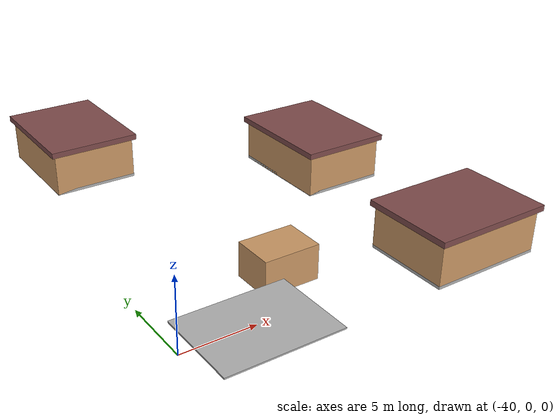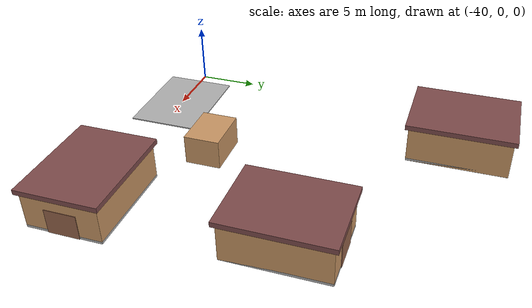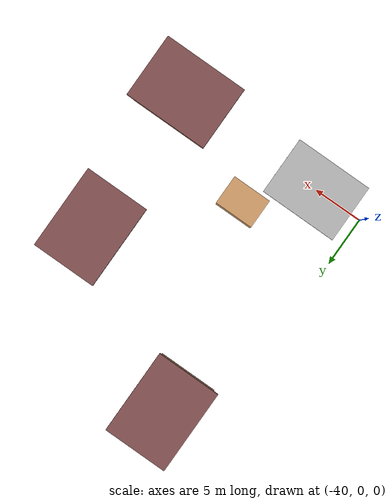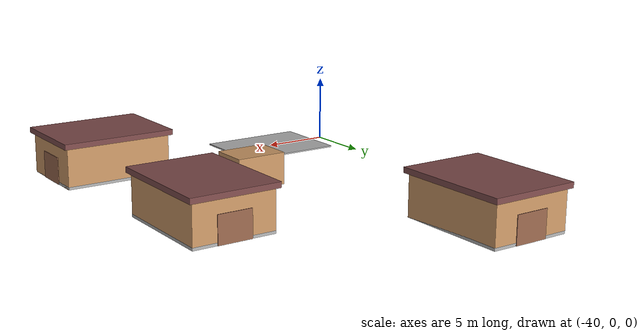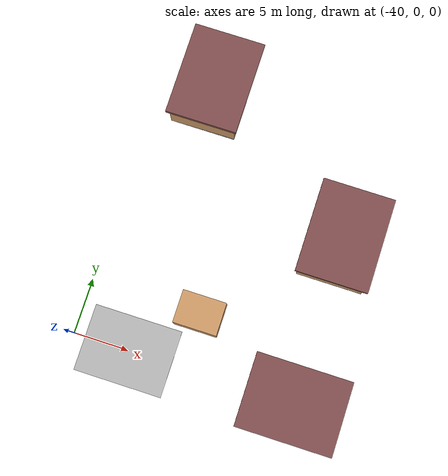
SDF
<sdf version="1.8">
 <world name="realistic_vineyard_world">
  <include>
   <uri>model://home/sam/vinmo/src/vineyard_mower_gazebo/models/storage_building</uri>
   <pose>-20 0 0 0 0 0</pose>
   <name>storage_building_1</name>
  </include>
  <include>
   <uri>model://home/sam/vinmo/src/vineyard_mower_gazebo/models/storage_building</uri>
   <pose>-20 15 0 0 0 1.57</pose>
   <name>equipment_shed_1</name>
  </include>
  <include>
   <uri>model://home/sam/vinmo/src/vineyard_mower_gazebo/models/storage_building</uri>
   <pose>-35 25 0 0 0 1.57</pose>
   <name>equipment_shed_2</name>
  </include>
  <model name="tool_shed">
   <static>true</static>
   <pose>-30 5 0 0 0 0</pose>
   <link name="shed_link">
    <collision name="shed_collision"><geometry><box><size>4 3 2.5</size></box></geometry></collision>
    <visual name="shed_visual">
     <geometry><box><size>4 3 2.5</size></box></geometry>
     <material><ambient>0.6 0.4 0.3 1</ambient><diffuse>0.8 0.6 0.4 1</diffuse></material>
    </visual>
   </link>
  </model>
  <model name="parking_pad">
   <static>true</static>
   <pose>-35 0 0 0 0 0</pose>
   <link name="parking_link">
    <collision name="parking_collision"><geometry><box><size>8 6 0.1</size></box></geometry></collision>
    <visual name="parking_visual">
     <geometry><box><size>8 6 0.1</size></box></geometry>
     <material><ambient>0.5 0.5 0.5 1</ambient><diffuse>0.7 0.7 0.7 1</diffuse></material>
    </visual>
   </link>
  </model>
 </world>
</sdf>
